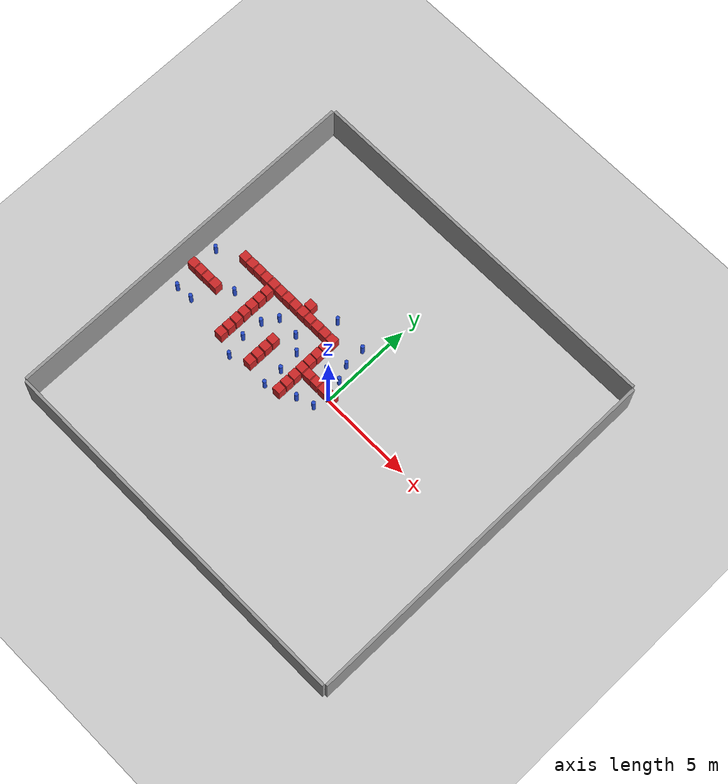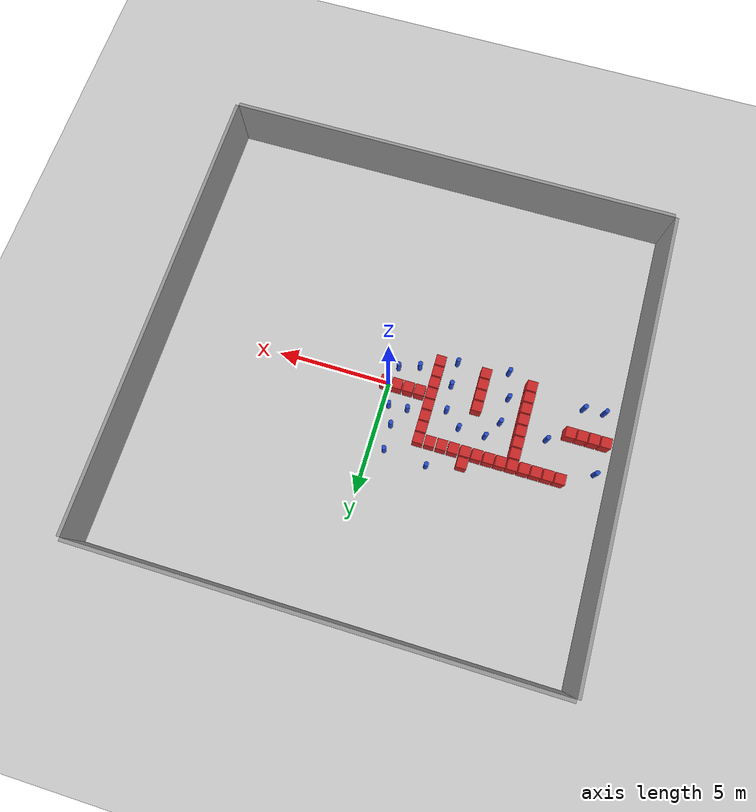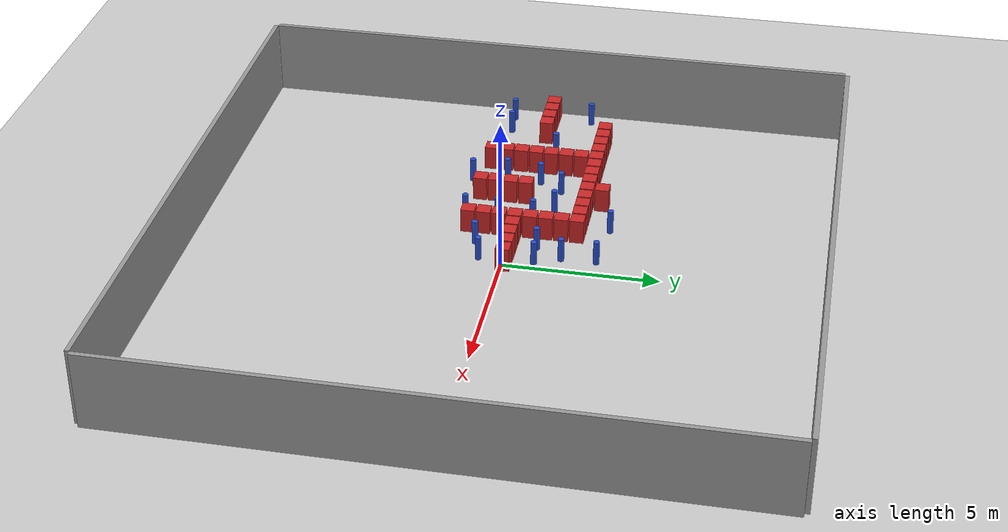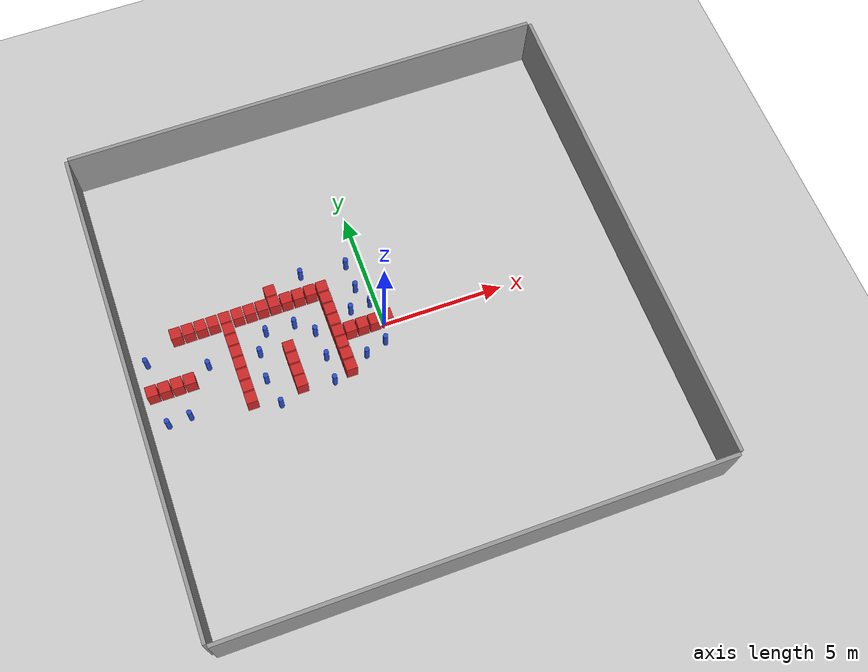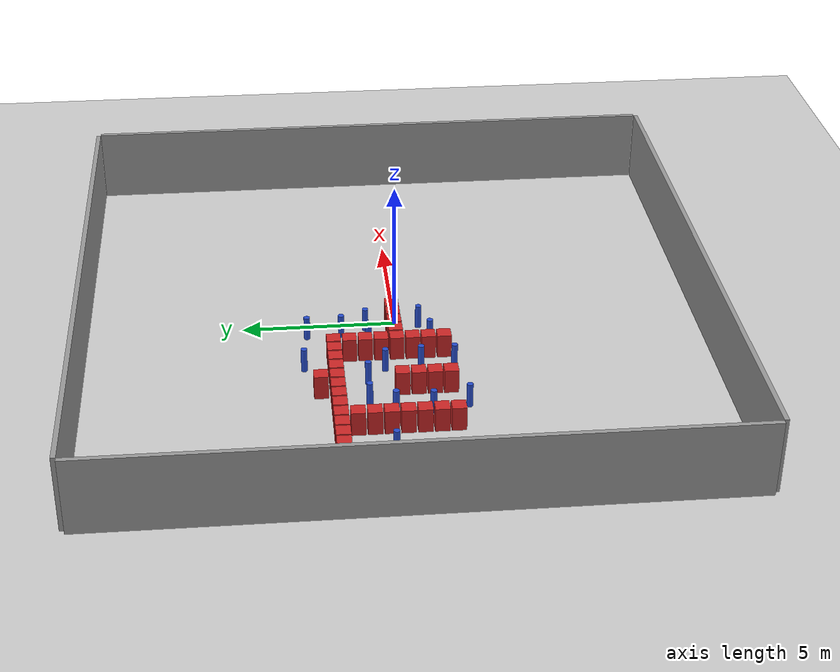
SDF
<sdf version="1.6">
 <world name="default">
  <model name="ground_plane">
   <static>1</static>
   <link name="link">
    <collision name="collision">
     <geometry><plane><normal>0 0 1</normal><size>100 100</size></plane></geometry>
     <surface><friction><ode><mu>100</mu><mu2>50</mu2></ode></friction></surface>
    </collision>
    <visual name="visual">
     <cast_shadows>0</cast_shadows>
     <geometry><plane><normal>0 0 1</normal><size>100 100</size></plane></geometry>
     <material>
      <script><uri>file://media/materials/scripts/gazebo.material</uri><name>Gazebo/Grey</name></script>
     </material>
    </visual>
   </link>
  </model>
  <model name="NamedLocations"><static>1</static><link name="DefaultStart"/></model>
  <model name="20x20_walls">
   <pose>0.044518 0.0211 0 0 -0 0</pose>
   <link name="Wall_1">
    <collision name="Wall_1_Collision">
     <geometry><box><size>20 0.15 2.5</size></box></geometry>
     <pose>0 0 1.25 0 -0 0</pose>
    </collision>
    <visual name="Wall_1_Visual">
     <pose>0 0 1.25 0 -0 0</pose>
     <geometry><box><size>20 0.15 2.5</size></box></geometry>
     <material>
      <script><uri>file://media/materials/scripts/gazebo.material</uri><name>Gazebo/Grey</name></script>
      <ambient>0.976471 0.992157 1 1</ambient>
     </material>
     <meta><layer>0</layer></meta>
    </visual>
    <pose>0 10.08 0 0 -0 0</pose>
   </link>
   <link name="Wall_3">
    <collision name="Wall_3_Collision">
     <geometry><box><size>20 0.15 2.5</size></box></geometry>
     <pose>0 0 1.25 0 -0 0</pose>
    </collision>
    <visual name="Wall_3_Visual">
     <pose>0 0 1.25 0 -0 0</pose>
     <geometry><box><size>20 0.15 2.5</size></box></geometry>
     <material>
      <script><uri>file://media/materials/scripts/gazebo.material</uri><name>Gazebo/Grey</name></script>
      <ambient>0.976471 0.992157 1 1</ambient>
     </material>
     <meta><layer>0</layer></meta>
    </visual>
    <pose>10.08 0 0 0 0 -1.5708</pose>
   </link>
   <link name="Wall_4">
    <collision name="Wall_4_Collision">
     <geometry><box><size>20 0.15 2.5</size></box></geometry>
     <pose>0 0 1.25 0 -0 0</pose>
    </collision>
    <visual name="Wall_4_Visual">
     <pose>0 0 1.25 0 -0 0</pose>
     <geometry><box><size>20 0.15 2.5</size></box></geometry>
     <material>
      <script><uri>file://media/materials/scripts/gazebo.material</uri><name>Gazebo/Grey</name></script>
      <ambient>0.976471 0.992157 1 1</ambient>
     </material>
     <meta><layer>0</layer></meta>
    </visual>
    <pose>0 -10.08 0 0 -0 3.14159</pose>
   </link>
   <link name="Wall_5">
    <collision name="Wall_5_Collision">
     <geometry><box><size>20 0.15 2.5</size></box></geometry>
     <pose>0 0 1.25 0 -0 0</pose>
    </collision>
    <visual name="Wall_5_Visual">
     <pose>0 0 1.25 0 -0 0</pose>
     <geometry><box><size>20 0.15 2.5</size></box></geometry>
     <material>
      <script><uri>file://media/materials/scripts/gazebo.material</uri><name>Gazebo/Grey</name></script>
      <ambient>0.976471 0.992157 1 1</ambient>
     </material>
     <meta><layer>0</layer></meta>
    </visual>
    <pose>-10.08 0 0 0 -0 1.5708</pose>
   </link>
   <static>1</static>
  </model>
  <model name="box_obstacle1">
   <static>0</static>
   <link name="box_obstacle">
    <pose>0 0 0.1 0 -0 0</pose>
    <inertial>
     <mass>100</mass>
     <inertia>
      <ixx>0.166667</ixx>
      <ixy>0</ixy>
      <ixz>0</ixz>
      <iyy>0.166667</iyy>
      <iyz>0</iyz>
      <izz>0.166667</izz>
     </inertia>
    </inertial>
    <collision name="collision"><geometry><box><size>0.45 0.45 0.8</size></box></geometry></collision>
    <visual name="visual">
     <geometry><box><size>0.45 0.45 0.8</size></box></geometry>
     <material>
      <script><name>Gazebo/Red</name><uri>file://media/materials/scripts/gazebo.material</uri></script>
     </material>
    </visual>
   </link>
   <pose>-9.49545 0.099728 0.299997 -3e-06 5e-06 -4e-06</pose>
  </model>
  <model name="box_obstacle4">
   <static>0</static>
   <link name="box_obstacle">
    <pose>0 0 0.1 0 -0 0</pose>
    <inertial>
     <mass>100</mass>
     <inertia>
      <ixx>0.166667</ixx>
      <ixy>0</ixy>
      <ixz>0</ixz>
      <iyy>0.166667</iyy>
      <iyz>0</iyz>
      <izz>0.166667</izz>
     </inertia>
    </inertial>
    <collision name="collision"><geometry><box><size>0.45 0.45 0.8</size></box></geometry></collision>
    <visual name="visual">
     <geometry><box><size>0.45 0.45 0.8</size></box></geometry>
     <material>
      <script><name>Gazebo/Red</name><uri>file://media/materials/scripts/gazebo.material</uri></script>
     </material>
    </visual>
   </link>
   <pose>-8.99045 0.099728 0.299997 -3e-06 5e-06 -4e-06</pose>
  </model>
  <model name="box_obstacle7">
   <static>0</static>
   <link name="box_obstacle">
    <pose>0 0 0.1 0 -0 0</pose>
    <inertial>
     <mass>100</mass>
     <inertia>
      <ixx>0.166667</ixx>
      <ixy>0</ixy>
      <ixz>0</ixz>
      <iyy>0.166667</iyy>
      <iyz>0</iyz>
      <izz>0.166667</izz>
     </inertia>
    </inertial>
    <collision name="collision"><geometry><box><size>0.45 0.45 0.8</size></box></geometry></collision>
    <visual name="visual">
     <geometry><box><size>0.45 0.45 0.8</size></box></geometry>
     <material>
      <script><name>Gazebo/Red</name><uri>file://media/materials/scripts/gazebo.material</uri></script>
     </material>
    </visual>
   </link>
   <pose>-8.48545 0.099728 0.299997 -3e-06 5e-06 -4e-06</pose>
  </model>
  <model name="box_obstacle16">
   <static>0</static>
   <link name="box_obstacle">
    <pose>0 0 0.1 0 -0 0</pose>
    <inertial>
     <mass>100</mass>
     <inertia>
      <ixx>0.166667</ixx>
      <ixy>0</ixy>
      <ixz>0</ixz>
      <iyy>0.166667</iyy>
      <iyz>0</iyz>
      <izz>0.166667</izz>
     </inertia>
    </inertial>
    <collision name="collision"><geometry><box><size>0.45 0.45 0.8</size></box></geometry></collision>
    <visual name="visual">
     <geometry><box><size>0.45 0.45 0.8</size></box></geometry>
     <material>
      <script><name>Gazebo/Red</name><uri>file://media/materials/scripts/gazebo.material</uri></script>
     </material>
    </visual>
   </link>
   <pose>-7.98045 0.099728 0.299997 -3e-06 5e-06 -4e-06</pose>
  </model>
  <model name="box_obstacle17">
   <static>0</static>
   <link name="box_obstacle">
    <pose>0 0 0.1 0 -0 0</pose>
    <inertial>
     <mass>100</mass>
     <inertia>
      <ixx>0.166667</ixx>
      <ixy>0</ixy>
      <ixz>0</ixz>
      <iyy>0.166667</iyy>
      <iyz>0</iyz>
      <izz>0.166667</izz>
     </inertia>
    </inertial>
    <collision name="collision"><geometry><box><size>0.45 0.45 0.8</size></box></geometry></collision>
    <visual name="visual">
     <geometry><box><size>0.45 0.45 0.8</size></box></geometry>
     <material>
      <script><name>Gazebo/Red</name><uri>file://media/materials/scripts/gazebo.material</uri></script>
     </material>
    </visual>
   </link>
   <pose>-7.98045 2.11973 0.299997 -3e-06 5e-06 -4e-06</pose>
  </model>
  <model name="box_obstacle28">
   <static>0</static>
   <link name="box_obstacle">
    <pose>0 0 0.1 0 -0 0</pose>
    <inertial>
     <mass>100</mass>
     <inertia>
      <ixx>0.166667</ixx>
      <ixy>0</ixy>
      <ixz>0</ixz>
      <iyy>0.166667</iyy>
      <iyz>0</iyz>
      <izz>0.166667</izz>
     </inertia>
    </inertial>
    <collision name="collision"><geometry><box><size>0.45 0.45 0.8</size></box></geometry></collision>
    <visual name="visual">
     <geometry><box><size>0.45 0.45 0.8</size></box></geometry>
     <material>
      <script><name>Gazebo/Red</name><uri>file://media/materials/scripts/gazebo.material</uri></script>
     </material>
    </visual>
   </link>
   <pose>-7.47545 2.11973 0.299997 -3e-06 5e-06 -4e-06</pose>
  </model>
  <model name="box_obstacle35">
   <static>0</static>
   <link name="box_obstacle">
    <pose>0 0 0.1 0 -0 0</pose>
    <inertial>
     <mass>100</mass>
     <inertia>
      <ixx>0.166667</ixx>
      <ixy>0</ixy>
      <ixz>0</ixz>
      <iyy>0.166667</iyy>
      <iyz>0</iyz>
      <izz>0.166667</izz>
     </inertia>
    </inertial>
    <collision name="collision"><geometry><box><size>0.45 0.45 0.8</size></box></geometry></collision>
    <visual name="visual">
     <geometry><box><size>0.45 0.45 0.8</size></box></geometry>
     <material>
      <script><name>Gazebo/Red</name><uri>file://media/materials/scripts/gazebo.material</uri></script>
     </material>
    </visual>
   </link>
   <pose>-6.97045 2.11973 0.299997 -3e-06 5e-06 -4e-06</pose>
  </model>
  <model name="box_obstacle42">
   <static>0</static>
   <link name="box_obstacle">
    <pose>0 0 0.1 0 -0 0</pose>
    <inertial>
     <mass>100</mass>
     <inertia>
      <ixx>0.166667</ixx>
      <ixy>0</ixy>
      <ixz>0</ixz>
      <iyy>0.166667</iyy>
      <iyz>0</iyz>
      <izz>0.166667</izz>
     </inertia>
    </inertial>
    <collision name="collision"><geometry><box><size>0.45 0.45 0.8</size></box></geometry></collision>
    <visual name="visual">
     <geometry><box><size>0.45 0.45 0.8</size></box></geometry>
     <material>
      <script><name>Gazebo/Red</name><uri>file://media/materials/scripts/gazebo.material</uri></script>
     </material>
    </visual>
   </link>
   <pose>-6.46545 2.11973 0.299997 -3e-06 5e-06 -4e-06</pose>
  </model>
  <model name="box_obstacle49">
   <static>0</static>
   <link name="box_obstacle">
    <pose>0 0 0.1 0 -0 0</pose>
    <inertial>
     <mass>100</mass>
     <inertia>
      <ixx>0.166667</ixx>
      <ixy>0</ixy>
      <ixz>0</ixz>
      <iyy>0.166667</iyy>
      <iyz>0</iyz>
      <izz>0.166667</izz>
     </inertia>
    </inertial>
    <collision name="collision"><geometry><box><size>0.45 0.45 0.8</size></box></geometry></collision>
    <visual name="visual">
     <geometry><box><size>0.45 0.45 0.8</size></box></geometry>
     <material>
      <script><name>Gazebo/Red</name><uri>file://media/materials/scripts/gazebo.material</uri></script>
     </material>
    </visual>
   </link>
   <pose>-5.96045 -1.41527 0.299997 -3e-06 5e-06 -4e-06</pose>
  </model>
  <model name="box_obstacle50">
   <static>0</static>
   <link name="box_obstacle">
    <pose>0 0 0.1 0 -0 0</pose>
    <inertial>
     <mass>100</mass>
     <inertia>
      <ixx>0.166667</ixx>
      <ixy>0</ixy>
      <ixz>0</ixz>
      <iyy>0.166667</iyy>
      <iyz>0</iyz>
      <izz>0.166667</izz>
     </inertia>
    </inertial>
    <collision name="collision"><geometry><box><size>0.45 0.45 0.8</size></box></geometry></collision>
    <visual name="visual">
     <geometry><box><size>0.45 0.45 0.8</size></box></geometry>
     <material>
      <script><name>Gazebo/Red</name><uri>file://media/materials/scripts/gazebo.material</uri></script>
     </material>
    </visual>
   </link>
   <pose>-5.96045 -0.910272 0.299997 -3e-06 5e-06 -4e-06</pose>
  </model>
  <model name="box_obstacle51">
   <static>0</static>
   <link name="box_obstacle">
    <pose>0 0 0.1 0 -0 0</pose>
    <inertial>
     <mass>100</mass>
     <inertia>
      <ixx>0.166667</ixx>
      <ixy>0</ixy>
      <ixz>0</ixz>
      <iyy>0.166667</iyy>
      <iyz>0</iyz>
      <izz>0.166667</izz>
     </inertia>
    </inertial>
    <collision name="collision"><geometry><box><size>0.45 0.45 0.8</size></box></geometry></collision>
    <visual name="visual">
     <geometry><box><size>0.45 0.45 0.8</size></box></geometry>
     <material>
      <script><name>Gazebo/Red</name><uri>file://media/materials/scripts/gazebo.material</uri></script>
     </material>
    </visual>
   </link>
   <pose>-5.96045 -0.405272 0.299997 -3e-06 5e-06 -4e-06</pose>
  </model>
  <model name="box_obstacle52">
   <static>0</static>
   <link name="box_obstacle">
    <pose>0 0 0.1 0 -0 0</pose>
    <inertial>
     <mass>100</mass>
     <inertia>
      <ixx>0.166667</ixx>
      <ixy>0</ixy>
      <ixz>0</ixz>
      <iyy>0.166667</iyy>
      <iyz>0</iyz>
      <izz>0.166667</izz>
     </inertia>
    </inertial>
    <collision name="collision"><geometry><box><size>0.45 0.45 0.8</size></box></geometry></collision>
    <visual name="visual">
     <geometry><box><size>0.45 0.45 0.8</size></box></geometry>
     <material>
      <script><name>Gazebo/Red</name><uri>file://media/materials/scripts/gazebo.material</uri></script>
     </material>
    </visual>
   </link>
   <pose>-5.96045 0.099728 0.299997 -3e-06 5e-06 -4e-06</pose>
  </model>
  <model name="box_obstacle53">
   <static>0</static>
   <link name="box_obstacle">
    <pose>0 0 0.1 0 -0 0</pose>
    <inertial>
     <mass>100</mass>
     <inertia>
      <ixx>0.166667</ixx>
      <ixy>0</ixy>
      <ixz>0</ixz>
      <iyy>0.166667</iyy>
      <iyz>0</iyz>
      <izz>0.166667</izz>
     </inertia>
    </inertial>
    <collision name="collision"><geometry><box><size>0.45 0.45 0.8</size></box></geometry></collision>
    <visual name="visual">
     <geometry><box><size>0.45 0.45 0.8</size></box></geometry>
     <material>
      <script><name>Gazebo/Red</name><uri>file://media/materials/scripts/gazebo.material</uri></script>
     </material>
    </visual>
   </link>
   <pose>-5.96045 0.604728 0.299997 -3e-06 5e-06 -4e-06</pose>
  </model>
  <model name="box_obstacle54">
   <static>0</static>
   <link name="box_obstacle">
    <pose>0 0 0.1 0 -0 0</pose>
    <inertial>
     <mass>100</mass>
     <inertia>
      <ixx>0.166667</ixx>
      <ixy>0</ixy>
      <ixz>0</ixz>
      <iyy>0.166667</iyy>
      <iyz>0</iyz>
      <izz>0.166667</izz>
     </inertia>
    </inertial>
    <collision name="collision"><geometry><box><size>0.45 0.45 0.8</size></box></geometry></collision>
    <visual name="visual">
     <geometry><box><size>0.45 0.45 0.8</size></box></geometry>
     <material>
      <script><name>Gazebo/Red</name><uri>file://media/materials/scripts/gazebo.material</uri></script>
     </material>
    </visual>
   </link>
   <pose>-5.96045 1.10973 0.299997 -3e-06 5e-06 -4e-06</pose>
  </model>
  <model name="box_obstacle55">
   <static>0</static>
   <link name="box_obstacle">
    <pose>0 0 0.1 0 -0 0</pose>
    <inertial>
     <mass>100</mass>
     <inertia>
      <ixx>0.166667</ixx>
      <ixy>0</ixy>
      <ixz>0</ixz>
      <iyy>0.166667</iyy>
      <iyz>0</iyz>
      <izz>0.166667</izz>
     </inertia>
    </inertial>
    <collision name="collision"><geometry><box><size>0.45 0.45 0.8</size></box></geometry></collision>
    <visual name="visual">
     <geometry><box><size>0.45 0.45 0.8</size></box></geometry>
     <material>
      <script><name>Gazebo/Red</name><uri>file://media/materials/scripts/gazebo.material</uri></script>
     </material>
    </visual>
   </link>
   <pose>-5.96045 1.61473 0.299997 -3e-06 5e-06 -4e-06</pose>
  </model>
  <model name="box_obstacle56">
   <static>0</static>
   <link name="box_obstacle">
    <pose>0 0 0.1 0 -0 0</pose>
    <inertial>
     <mass>100</mass>
     <inertia>
      <ixx>0.166667</ixx>
      <ixy>0</ixy>
      <ixz>0</ixz>
      <iyy>0.166667</iyy>
      <iyz>0</iyz>
      <izz>0.166667</izz>
     </inertia>
    </inertial>
    <collision name="collision"><geometry><box><size>0.45 0.45 0.8</size></box></geometry></collision>
    <visual name="visual">
     <geometry><box><size>0.45 0.45 0.8</size></box></geometry>
     <material>
      <script><name>Gazebo/Red</name><uri>file://media/materials/scripts/gazebo.material</uri></script>
     </material>
    </visual>
   </link>
   <pose>-5.96045 2.11973 0.299997 -3e-06 5e-06 -4e-06</pose>
  </model>
  <model name="box_obstacle68">
   <static>0</static>
   <link name="box_obstacle">
    <pose>0 0 0.1 0 -0 0</pose>
    <inertial>
     <mass>100</mass>
     <inertia>
      <ixx>0.166667</ixx>
      <ixy>0</ixy>
      <ixz>0</ixz>
      <iyy>0.166667</iyy>
      <iyz>0</iyz>
      <izz>0.166667</izz>
     </inertia>
    </inertial>
    <collision name="collision"><geometry><box><size>0.45 0.45 0.8</size></box></geometry></collision>
    <visual name="visual">
     <geometry><box><size>0.45 0.45 0.8</size></box></geometry>
     <material>
      <script><name>Gazebo/Red</name><uri>file://media/materials/scripts/gazebo.material</uri></script>
     </material>
    </visual>
   </link>
   <pose>-5.45545 2.11973 0.299997 -3e-06 5e-06 -4e-06</pose>
  </model>
  <model name="box_obstacle72">
   <static>0</static>
   <link name="box_obstacle">
    <pose>0 0 0.1 0 -0 0</pose>
    <inertial>
     <mass>100</mass>
     <inertia>
      <ixx>0.166667</ixx>
      <ixy>0</ixy>
      <ixz>0</ixz>
      <iyy>0.166667</iyy>
      <iyz>0</iyz>
      <izz>0.166667</izz>
     </inertia>
    </inertial>
    <collision name="collision"><geometry><box><size>0.45 0.45 0.8</size></box></geometry></collision>
    <visual name="visual">
     <geometry><box><size>0.45 0.45 0.8</size></box></geometry>
     <material>
      <script><name>Gazebo/Red</name><uri>file://media/materials/scripts/gazebo.material</uri></script>
     </material>
    </visual>
   </link>
   <pose>-4.95045 2.11973 0.299997 -3e-06 5e-06 -4e-06</pose>
  </model>
  <model name="box_obstacle76">
   <static>0</static>
   <link name="box_obstacle">
    <pose>0 0 0.1 0 -0 0</pose>
    <inertial>
     <mass>100</mass>
     <inertia>
      <ixx>0.166667</ixx>
      <ixy>0</ixy>
      <ixz>0</ixz>
      <iyy>0.166667</iyy>
      <iyz>0</iyz>
      <izz>0.166667</izz>
     </inertia>
    </inertial>
    <collision name="collision"><geometry><box><size>0.45 0.45 0.8</size></box></geometry></collision>
    <visual name="visual">
     <geometry><box><size>0.45 0.45 0.8</size></box></geometry>
     <material>
      <script><name>Gazebo/Red</name><uri>file://media/materials/scripts/gazebo.material</uri></script>
     </material>
    </visual>
   </link>
   <pose>-4.44545 2.11973 0.299997 -3e-06 5e-06 -4e-06</pose>
  </model>
  <model name="box_obstacle88">
   <static>0</static>
   <link name="box_obstacle">
    <pose>0 0 0.1 0 -0 0</pose>
    <inertial>
     <mass>100</mass>
     <inertia>
      <ixx>0.166667</ixx>
      <ixy>0</ixy>
      <ixz>0</ixz>
      <iyy>0.166667</iyy>
      <iyz>0</iyz>
      <izz>0.166667</izz>
     </inertia>
    </inertial>
    <collision name="collision"><geometry><box><size>0.45 0.45 0.8</size></box></geometry></collision>
    <visual name="visual">
     <geometry><box><size>0.45 0.45 0.8</size></box></geometry>
     <material>
      <script><name>Gazebo/Red</name><uri>file://media/materials/scripts/gazebo.material</uri></script>
     </material>
    </visual>
   </link>
   <pose>-3.94045 -1.41527 0.299997 -3e-06 5e-06 -4e-06</pose>
  </model>
  <model name="box_obstacle89">
   <static>0</static>
   <link name="box_obstacle">
    <pose>0 0 0.1 0 -0 0</pose>
    <inertial>
     <mass>100</mass>
     <inertia>
      <ixx>0.166667</ixx>
      <ixy>0</ixy>
      <ixz>0</ixz>
      <iyy>0.166667</iyy>
      <iyz>0</iyz>
      <izz>0.166667</izz>
     </inertia>
    </inertial>
    <collision name="collision"><geometry><box><size>0.45 0.45 0.8</size></box></geometry></collision>
    <visual name="visual">
     <geometry><box><size>0.45 0.45 0.8</size></box></geometry>
     <material>
      <script><name>Gazebo/Red</name><uri>file://media/materials/scripts/gazebo.material</uri></script>
     </material>
    </visual>
   </link>
   <pose>-3.94045 -0.910272 0.299997 -3e-06 5e-06 -4e-06</pose>
  </model>
  <model name="box_obstacle90">
   <static>0</static>
   <link name="box_obstacle">
    <pose>0 0 0.1 0 -0 0</pose>
    <inertial>
     <mass>100</mass>
     <inertia>
      <ixx>0.166667</ixx>
      <ixy>0</ixy>
      <ixz>0</ixz>
      <iyy>0.166667</iyy>
      <iyz>0</iyz>
      <izz>0.166667</izz>
     </inertia>
    </inertial>
    <collision name="collision"><geometry><box><size>0.45 0.45 0.8</size></box></geometry></collision>
    <visual name="visual">
     <geometry><box><size>0.45 0.45 0.8</size></box></geometry>
     <material>
      <script><name>Gazebo/Red</name><uri>file://media/materials/scripts/gazebo.material</uri></script>
     </material>
    </visual>
   </link>
   <pose>-3.94045 -0.405272 0.299997 -3e-06 5e-06 -4e-06</pose>
  </model>
  <model name="box_obstacle91">
   <static>0</static>
   <link name="box_obstacle">
    <pose>0 0 0.1 0 -0 0</pose>
    <inertial>
     <mass>100</mass>
     <inertia>
      <ixx>0.166667</ixx>
      <ixy>0</ixy>
      <ixz>0</ixz>
      <iyy>0.166667</iyy>
      <iyz>0</iyz>
      <izz>0.166667</izz>
     </inertia>
    </inertial>
    <collision name="collision"><geometry><box><size>0.45 0.45 0.8</size></box></geometry></collision>
    <visual name="visual">
     <geometry><box><size>0.45 0.45 0.8</size></box></geometry>
     <material>
      <script><name>Gazebo/Red</name><uri>file://media/materials/scripts/gazebo.material</uri></script>
     </material>
    </visual>
   </link>
   <pose>-3.94045 0.099728 0.299997 -3e-06 5e-06 -4e-06</pose>
  </model>
  <model name="box_obstacle92">
   <static>0</static>
   <link name="box_obstacle">
    <pose>0 0 0.1 0 -0 0</pose>
    <inertial>
     <mass>100</mass>
     <inertia>
      <ixx>0.166667</ixx>
      <ixy>0</ixy>
      <ixz>0</ixz>
      <iyy>0.166667</iyy>
      <iyz>0</iyz>
      <izz>0.166667</izz>
     </inertia>
    </inertial>
    <collision name="collision"><geometry><box><size>0.45 0.45 0.8</size></box></geometry></collision>
    <visual name="visual">
     <geometry><box><size>0.45 0.45 0.8</size></box></geometry>
     <material>
      <script><name>Gazebo/Red</name><uri>file://media/materials/scripts/gazebo.material</uri></script>
     </material>
    </visual>
   </link>
   <pose>-3.94045 2.11973 0.299997 -3e-06 5e-06 -4e-06</pose>
  </model>
  <model name="box_obstacle93">
   <static>0</static>
   <link name="box_obstacle">
    <pose>0 0 0.1 0 -0 0</pose>
    <inertial>
     <mass>100</mass>
     <inertia>
      <ixx>0.166667</ixx>
      <ixy>0</ixy>
      <ixz>0</ixz>
      <iyy>0.166667</iyy>
      <iyz>0</iyz>
      <izz>0.166667</izz>
     </inertia>
    </inertial>
    <collision name="collision"><geometry><box><size>0.45 0.45 0.8</size></box></geometry></collision>
    <visual name="visual">
     <geometry><box><size>0.45 0.45 0.8</size></box></geometry>
     <material>
      <script><name>Gazebo/Red</name><uri>file://media/materials/scripts/gazebo.material</uri></script>
     </material>
    </visual>
   </link>
   <pose>-3.94045 2.62473 0.299997 -3e-06 5e-06 -4e-06</pose>
  </model>
  <model name="box_obstacle104">
   <static>0</static>
   <link name="box_obstacle">
    <pose>0 0 0.1 0 -0 0</pose>
    <inertial>
     <mass>100</mass>
     <inertia>
      <ixx>0.166667</ixx>
      <ixy>0</ixy>
      <ixz>0</ixz>
      <iyy>0.166667</iyy>
      <iyz>0</iyz>
      <izz>0.166667</izz>
     </inertia>
    </inertial>
    <collision name="collision"><geometry><box><size>0.45 0.45 0.8</size></box></geometry></collision>
    <visual name="visual">
     <geometry><box><size>0.45 0.45 0.8</size></box></geometry>
     <material>
      <script><name>Gazebo/Red</name><uri>file://media/materials/scripts/gazebo.material</uri></script>
     </material>
    </visual>
   </link>
   <pose>-3.43545 2.11973 0.299997 -3e-06 5e-06 -4e-06</pose>
  </model>
  <model name="box_obstacle109">
   <static>0</static>
   <link name="box_obstacle">
    <pose>0 0 0.1 0 -0 0</pose>
    <inertial>
     <mass>100</mass>
     <inertia>
      <ixx>0.166667</ixx>
      <ixy>0</ixy>
      <ixz>0</ixz>
      <iyy>0.166667</iyy>
      <iyz>0</iyz>
      <izz>0.166667</izz>
     </inertia>
    </inertial>
    <collision name="collision"><geometry><box><size>0.45 0.45 0.8</size></box></geometry></collision>
    <visual name="visual">
     <geometry><box><size>0.45 0.45 0.8</size></box></geometry>
     <material>
      <script><name>Gazebo/Red</name><uri>file://media/materials/scripts/gazebo.material</uri></script>
     </material>
    </visual>
   </link>
   <pose>-2.93045 2.11973 0.299997 -3e-06 5e-06 -4e-06</pose>
  </model>
  <model name="box_obstacle114">
   <static>0</static>
   <link name="box_obstacle">
    <pose>0 0 0.1 0 -0 0</pose>
    <inertial>
     <mass>100</mass>
     <inertia>
      <ixx>0.166667</ixx>
      <ixy>0</ixy>
      <ixz>0</ixz>
      <iyy>0.166667</iyy>
      <iyz>0</iyz>
      <izz>0.166667</izz>
     </inertia>
    </inertial>
    <collision name="collision"><geometry><box><size>0.45 0.45 0.8</size></box></geometry></collision>
    <visual name="visual">
     <geometry><box><size>0.45 0.45 0.8</size></box></geometry>
     <material>
      <script><name>Gazebo/Red</name><uri>file://media/materials/scripts/gazebo.material</uri></script>
     </material>
    </visual>
   </link>
   <pose>-2.42545 2.11973 0.299997 -3e-06 5e-06 -4e-06</pose>
  </model>
  <model name="box_obstacle121">
   <static>0</static>
   <link name="box_obstacle">
    <pose>0 0 0.1 0 -0 0</pose>
    <inertial>
     <mass>100</mass>
     <inertia>
      <ixx>0.166667</ixx>
      <ixy>0</ixy>
      <ixz>0</ixz>
      <iyy>0.166667</iyy>
      <iyz>0</iyz>
      <izz>0.166667</izz>
     </inertia>
    </inertial>
    <collision name="collision"><geometry><box><size>0.45 0.45 0.8</size></box></geometry></collision>
    <visual name="visual">
     <geometry><box><size>0.45 0.45 0.8</size></box></geometry>
     <material>
      <script><name>Gazebo/Red</name><uri>file://media/materials/scripts/gazebo.material</uri></script>
     </material>
    </visual>
   </link>
   <pose>-1.92045 -1.41527 0.299997 -3e-06 5e-06 -4e-06</pose>
  </model>
  <model name="box_obstacle122">
   <static>0</static>
   <link name="box_obstacle">
    <pose>0 0 0.1 0 -0 0</pose>
    <inertial>
     <mass>100</mass>
     <inertia>
      <ixx>0.166667</ixx>
      <ixy>0</ixy>
      <ixz>0</ixz>
      <iyy>0.166667</iyy>
      <iyz>0</iyz>
      <izz>0.166667</izz>
     </inertia>
    </inertial>
    <collision name="collision"><geometry><box><size>0.45 0.45 0.8</size></box></geometry></collision>
    <visual name="visual">
     <geometry><box><size>0.45 0.45 0.8</size></box></geometry>
     <material>
      <script><name>Gazebo/Red</name><uri>file://media/materials/scripts/gazebo.material</uri></script>
     </material>
    </visual>
   </link>
   <pose>-1.92045 -0.910272 0.299997 -3e-06 5e-06 -4e-06</pose>
  </model>
  <model name="box_obstacle123">
   <static>0</static>
   <link name="box_obstacle">
    <pose>0 0 0.1 0 -0 0</pose>
    <inertial>
     <mass>100</mass>
     <inertia>
      <ixx>0.166667</ixx>
      <ixy>0</ixy>
      <ixz>0</ixz>
      <iyy>0.166667</iyy>
      <iyz>0</iyz>
      <izz>0.166667</izz>
     </inertia>
    </inertial>
    <collision name="collision"><geometry><box><size>0.45 0.45 0.8</size></box></geometry></collision>
    <visual name="visual">
     <geometry><box><size>0.45 0.45 0.8</size></box></geometry>
     <material>
      <script><name>Gazebo/Red</name><uri>file://media/materials/scripts/gazebo.material</uri></script>
     </material>
    </visual>
   </link>
   <pose>-1.92045 -0.405272 0.299997 -3e-06 5e-06 -4e-06</pose>
  </model>
  <model name="box_obstacle124">
   <static>0</static>
   <link name="box_obstacle">
    <pose>0 0 0.1 0 -0 0</pose>
    <inertial>
     <mass>100</mass>
     <inertia>
      <ixx>0.166667</ixx>
      <ixy>0</ixy>
      <ixz>0</ixz>
      <iyy>0.166667</iyy>
      <iyz>0</iyz>
      <izz>0.166667</izz>
     </inertia>
    </inertial>
    <collision name="collision"><geometry><box><size>0.45 0.45 0.8</size></box></geometry></collision>
    <visual name="visual">
     <geometry><box><size>0.45 0.45 0.8</size></box></geometry>
     <material>
      <script><name>Gazebo/Red</name><uri>file://media/materials/scripts/gazebo.material</uri></script>
     </material>
    </visual>
   </link>
   <pose>-1.92045 0.099728 0.299997 -3e-06 5e-06 -4e-06</pose>
  </model>
  <model name="box_obstacle125">
   <static>0</static>
   <link name="box_obstacle">
    <pose>0 0 0.1 0 -0 0</pose>
    <inertial>
     <mass>100</mass>
     <inertia>
      <ixx>0.166667</ixx>
      <ixy>0</ixy>
      <ixz>0</ixz>
      <iyy>0.166667</iyy>
      <iyz>0</iyz>
      <izz>0.166667</izz>
     </inertia>
    </inertial>
    <collision name="collision"><geometry><box><size>0.45 0.45 0.8</size></box></geometry></collision>
    <visual name="visual">
     <geometry><box><size>0.45 0.45 0.8</size></box></geometry>
     <material>
      <script><name>Gazebo/Red</name><uri>file://media/materials/scripts/gazebo.material</uri></script>
     </material>
    </visual>
   </link>
   <pose>-1.92045 0.604728 0.299997 -3e-06 5e-06 -4e-06</pose>
  </model>
  <model name="box_obstacle126">
   <static>0</static>
   <link name="box_obstacle">
    <pose>0 0 0.1 0 -0 0</pose>
    <inertial>
     <mass>100</mass>
     <inertia>
      <ixx>0.166667</ixx>
      <ixy>0</ixy>
      <ixz>0</ixz>
      <iyy>0.166667</iyy>
      <iyz>0</iyz>
      <izz>0.166667</izz>
     </inertia>
    </inertial>
    <collision name="collision"><geometry><box><size>0.45 0.45 0.8</size></box></geometry></collision>
    <visual name="visual">
     <geometry><box><size>0.45 0.45 0.8</size></box></geometry>
     <material>
      <script><name>Gazebo/Red</name><uri>file://media/materials/scripts/gazebo.material</uri></script>
     </material>
    </visual>
   </link>
   <pose>-1.92045 1.10973 0.299997 -3e-06 5e-06 -4e-06</pose>
  </model>
  <model name="box_obstacle127">
   <static>0</static>
   <link name="box_obstacle">
    <pose>0 0 0.1 0 -0 0</pose>
    <inertial>
     <mass>100</mass>
     <inertia>
      <ixx>0.166667</ixx>
      <ixy>0</ixy>
      <ixz>0</ixz>
      <iyy>0.166667</iyy>
      <iyz>0</iyz>
      <izz>0.166667</izz>
     </inertia>
    </inertial>
    <collision name="collision"><geometry><box><size>0.45 0.45 0.8</size></box></geometry></collision>
    <visual name="visual">
     <geometry><box><size>0.45 0.45 0.8</size></box></geometry>
     <material>
      <script><name>Gazebo/Red</name><uri>file://media/materials/scripts/gazebo.material</uri></script>
     </material>
    </visual>
   </link>
   <pose>-1.92045 1.61473 0.299997 -3e-06 5e-06 -4e-06</pose>
  </model>
  <model name="box_obstacle128">
   <static>0</static>
   <link name="box_obstacle">
    <pose>0 0 0.1 0 -0 0</pose>
    <inertial>
     <mass>100</mass>
     <inertia>
      <ixx>0.166667</ixx>
      <ixy>0</ixy>
      <ixz>0</ixz>
      <iyy>0.166667</iyy>
      <iyz>0</iyz>
      <izz>0.166667</izz>
     </inertia>
    </inertial>
    <collision name="collision"><geometry><box><size>0.45 0.45 0.8</size></box></geometry></collision>
    <visual name="visual">
     <geometry><box><size>0.45 0.45 0.8</size></box></geometry>
     <material>
      <script><name>Gazebo/Red</name><uri>file://media/materials/scripts/gazebo.material</uri></script>
     </material>
    </visual>
   </link>
   <pose>-1.92045 2.11973 0.299997 -3e-06 5e-06 -4e-06</pose>
  </model>
  <model name="box_obstacle139">
   <static>0</static>
   <link name="box_obstacle">
    <pose>0 0 0.1 0 -0 0</pose>
    <inertial>
     <mass>100</mass>
     <inertia>
      <ixx>0.166667</ixx>
      <ixy>0</ixy>
      <ixz>0</ixz>
      <iyy>0.166667</iyy>
      <iyz>0</iyz>
      <izz>0.166667</izz>
     </inertia>
    </inertial>
    <collision name="collision"><geometry><box><size>0.45 0.45 0.8</size></box></geometry></collision>
    <visual name="visual">
     <geometry><box><size>0.45 0.45 0.8</size></box></geometry>
     <material>
      <script><name>Gazebo/Red</name><uri>file://media/materials/scripts/gazebo.material</uri></script>
     </material>
    </visual>
   </link>
   <pose>-1.41545 0.099728 0.299997 -3e-06 5e-06 -4e-06</pose>
  </model>
  <model name="box_obstacle146">
   <static>0</static>
   <link name="box_obstacle">
    <pose>0 0 0.1 0 -0 0</pose>
    <inertial>
     <mass>100</mass>
     <inertia>
      <ixx>0.166667</ixx>
      <ixy>0</ixy>
      <ixz>0</ixz>
      <iyy>0.166667</iyy>
      <iyz>0</iyz>
      <izz>0.166667</izz>
     </inertia>
    </inertial>
    <collision name="collision"><geometry><box><size>0.45 0.45 0.8</size></box></geometry></collision>
    <visual name="visual">
     <geometry><box><size>0.45 0.45 0.8</size></box></geometry>
     <material>
      <script><name>Gazebo/Red</name><uri>file://media/materials/scripts/gazebo.material</uri></script>
     </material>
    </visual>
   </link>
   <pose>-0.910447 0.099728 0.299997 -3e-06 5e-06 -4e-06</pose>
  </model>
  <model name="box_obstacle153">
   <static>0</static>
   <link name="box_obstacle">
    <pose>0 0 0.1 0 -0 0</pose>
    <inertial>
     <mass>100</mass>
     <inertia>
      <ixx>0.166667</ixx>
      <ixy>0</ixy>
      <ixz>0</ixz>
      <iyy>0.166667</iyy>
      <iyz>0</iyz>
      <izz>0.166667</izz>
     </inertia>
    </inertial>
    <collision name="collision"><geometry><box><size>0.45 0.45 0.8</size></box></geometry></collision>
    <visual name="visual">
     <geometry><box><size>0.45 0.45 0.8</size></box></geometry>
     <material>
      <script><name>Gazebo/Red</name><uri>file://media/materials/scripts/gazebo.material</uri></script>
     </material>
    </visual>
   </link>
   <pose>-0.405447 0.099728 0.299997 -3e-06 5e-06 -4e-06</pose>
  </model>
  <model name="box_obstacle160">
   <static>0</static>
   <link name="box_obstacle">
    <pose>0 0 0.1 0 -0 0</pose>
    <inertial>
     <mass>100</mass>
     <inertia>
      <ixx>0.166667</ixx>
      <ixy>0</ixy>
      <ixz>0</ixz>
      <iyy>0.166667</iyy>
      <iyz>0</iyz>
      <izz>0.166667</izz>
     </inertia>
    </inertial>
    <collision name="collision"><geometry><box><size>0.45 0.45 0.8</size></box></geometry></collision>
    <visual name="visual">
     <geometry><box><size>0.45 0.45 0.8</size></box></geometry>
     <material>
      <script><name>Gazebo/Red</name><uri>file://media/materials/scripts/gazebo.material</uri></script>
     </material>
    </visual>
   </link>
   <pose>0.099553 0.099728 0.299997 -3e-06 5e-06 -4e-06</pose>
  </model>
  <model name="cylinder_obstacle0">
   <static>0</static>
   <link name="link">
    <pose>0 0 1 0 -0 0</pose>
    <inertial>
     <mass>100</mass>
     <inertia>
      <ixx>0.166667</ixx>
      <ixy>0</ixy>
      <ixz>0</ixz>
      <iyy>0.166667</iyy>
      <iyz>0</iyz>
      <izz>0.166667</izz>
     </inertia>
    </inertial>
    <collision name="collision">
     <geometry><cylinder><radius>0.1</radius><length>0.8</length></cylinder></geometry>
    </collision>
    <visual name="visual">
     <geometry><cylinder><radius>0.1</radius><length>0.8</length></cylinder></geometry>
     <material>
      <script><name>Gazebo/Blue</name><uri>file://media/materials/scripts/gazebo.material</uri></script>
     </material>
    </visual>
   </link>
   <pose>-8.35847 -1.19453 -0.600002 3e-06 1e-06 0.003885</pose>
  </model>
  <model name="cylinder_obstacle3">
   <static>0</static>
   <link name="link">
    <pose>0 0 1 0 -0 0</pose>
    <inertial>
     <mass>100</mass>
     <inertia>
      <ixx>0.166667</ixx>
      <ixy>0</ixy>
      <ixz>0</ixz>
      <iyy>0.166667</iyy>
      <iyz>0</iyz>
      <izz>0.166667</izz>
     </inertia>
    </inertial>
    <collision name="collision">
     <geometry><cylinder><radius>0.1</radius><length>0.8</length></cylinder></geometry>
    </collision>
    <visual name="visual">
     <geometry><cylinder><radius>0.1</radius><length>0.8</length></cylinder></geometry>
     <material>
      <script><name>Gazebo/Blue</name><uri>file://media/materials/scripts/gazebo.material</uri></script>
     </material>
    </visual>
   </link>
   <pose>-0.622862 1.80342 -0.600002 3e-06 1e-06 0.003885</pose>
  </model>
  <model name="cylinder_obstacle4">
   <static>0</static>
   <link name="link">
    <pose>0 0 1 0 -0 0</pose>
    <inertial>
     <mass>100</mass>
     <inertia>
      <ixx>0.166667</ixx>
      <ixy>0</ixy>
      <ixz>0</ixz>
      <iyy>0.166667</iyy>
      <iyz>0</iyz>
      <izz>0.166667</izz>
     </inertia>
    </inertial>
    <collision name="collision">
     <geometry><cylinder><radius>0.1</radius><length>0.8</length></cylinder></geometry>
    </collision>
    <visual name="visual">
     <geometry><cylinder><radius>0.1</radius><length>0.8</length></cylinder></geometry>
     <material>
      <script><name>Gazebo/Blue</name><uri>file://media/materials/scripts/gazebo.material</uri></script>
     </material>
    </visual>
   </link>
   <pose>-2.73746 0.530738 -0.600002 3e-06 1e-06 0.003885</pose>
  </model>
  <model name="cylinder_obstacle12">
   <static>0</static>
   <link name="link">
    <pose>0 0 1 0 -0 0</pose>
    <inertial>
     <mass>100</mass>
     <inertia>
      <ixx>0.166667</ixx>
      <ixy>0</ixy>
      <ixz>0</ixz>
      <iyy>0.166667</iyy>
      <iyz>0</iyz>
      <izz>0.166667</izz>
     </inertia>
    </inertial>
    <collision name="collision">
     <geometry><cylinder><radius>0.1</radius><length>0.8</length></cylinder></geometry>
    </collision>
    <visual name="visual">
     <geometry><cylinder><radius>0.1</radius><length>0.8</length></cylinder></geometry>
     <material>
      <script><name>Gazebo/Blue</name><uri>file://media/materials/scripts/gazebo.material</uri></script>
     </material>
    </visual>
   </link>
   <pose>-3.42378 1.12482 -0.600002 3e-06 1e-06 0.003885</pose>
  </model>
  <model name="cylinder_obstacle16">
   <static>0</static>
   <link name="link">
    <pose>0 0 1 0 -0 0</pose>
    <inertial>
     <mass>100</mass>
     <inertia>
      <ixx>0.166667</ixx>
      <ixy>0</ixy>
      <ixz>0</ixz>
      <iyy>0.166667</iyy>
      <iyz>0</iyz>
      <izz>0.166667</izz>
     </inertia>
    </inertial>
    <collision name="collision">
     <geometry><cylinder><radius>0.1</radius><length>0.8</length></cylinder></geometry>
    </collision>
    <visual name="visual">
     <geometry><cylinder><radius>0.1</radius><length>0.8</length></cylinder></geometry>
     <material>
      <script><name>Gazebo/Blue</name><uri>file://media/materials/scripts/gazebo.material</uri></script>
     </material>
    </visual>
   </link>
   <pose>-9.40152 1.43687 -0.600002 3e-06 1e-06 0.003885</pose>
  </model>
  <model name="cylinder_obstacle20">
   <static>0</static>
   <link name="link">
    <pose>0 0 1 0 -0 0</pose>
    <inertial>
     <mass>100</mass>
     <inertia>
      <ixx>0.166667</ixx>
      <ixy>0</ixy>
      <ixz>0</ixz>
      <iyy>0.166667</iyy>
      <iyz>0</iyz>
      <izz>0.166667</izz>
     </inertia>
    </inertial>
    <collision name="collision">
     <geometry><cylinder><radius>0.1</radius><length>0.8</length></cylinder></geometry>
    </collision>
    <visual name="visual">
     <geometry><cylinder><radius>0.1</radius><length>0.8</length></cylinder></geometry>
     <material>
      <script><name>Gazebo/Blue</name><uri>file://media/materials/scripts/gazebo.material</uri></script>
     </material>
    </visual>
   </link>
   <pose>-2.6556 -1.67557 -0.600002 3e-06 1e-06 0.003885</pose>
  </model>
  <model name="cylinder_obstacle30">
   <static>0</static>
   <link name="link">
    <pose>0 0 1 0 -0 0</pose>
    <inertial>
     <mass>100</mass>
     <inertia>
      <ixx>0.166667</ixx>
      <ixy>0</ixy>
      <ixz>0</ixz>
      <iyy>0.166667</iyy>
      <iyz>0</iyz>
      <izz>0.166667</izz>
     </inertia>
    </inertial>
    <collision name="collision">
     <geometry><cylinder><radius>0.1</radius><length>0.8</length></cylinder></geometry>
    </collision>
    <visual name="visual">
     <geometry><cylinder><radius>0.1</radius><length>0.8</length></cylinder></geometry>
     <material>
      <script><name>Gazebo/Blue</name><uri>file://media/materials/scripts/gazebo.material</uri></script>
     </material>
    </visual>
   </link>
   <pose>-5.07218 0.394599 -0.600002 3e-06 1e-06 0.003885</pose>
  </model>
  <model name="cylinder_obstacle39">
   <static>0</static>
   <link name="link">
    <pose>0 0 1 0 -0 0</pose>
    <inertial>
     <mass>100</mass>
     <inertia>
      <ixx>0.166667</ixx>
      <ixy>0</ixy>
      <ixz>0</ixz>
      <iyy>0.166667</iyy>
      <iyz>0</iyz>
      <izz>0.166667</izz>
     </inertia>
    </inertial>
    <collision name="collision">
     <geometry><cylinder><radius>0.1</radius><length>0.8</length></cylinder></geometry>
    </collision>
    <visual name="visual">
     <geometry><cylinder><radius>0.1</radius><length>0.8</length></cylinder></geometry>
     <material>
      <script><name>Gazebo/Blue</name><uri>file://media/materials/scripts/gazebo.material</uri></script>
     </material>
    </visual>
   </link>
   <pose>-0.284673 0.993244 -0.600002 3e-06 1e-06 0.003885</pose>
  </model>
  <model name="cylinder_obstacle44">
   <static>0</static>
   <link name="link">
    <pose>0 0 1 0 -0 0</pose>
    <inertial>
     <mass>100</mass>
     <inertia>
      <ixx>0.166667</ixx>
      <ixy>0</ixy>
      <ixz>0</ixz>
      <iyy>0.166667</iyy>
      <iyz>0</iyz>
      <izz>0.166667</izz>
     </inertia>
    </inertial>
    <collision name="collision">
     <geometry><cylinder><radius>0.1</radius><length>0.8</length></cylinder></geometry>
    </collision>
    <visual name="visual">
     <geometry><cylinder><radius>0.1</radius><length>0.8</length></cylinder></geometry>
     <material>
      <script><name>Gazebo/Blue</name><uri>file://media/materials/scripts/gazebo.material</uri></script>
     </material>
    </visual>
   </link>
   <pose>-0.233148 -0.759031 -0.600002 3e-06 1e-06 0.003885</pose>
  </model>
  <model name="cylinder_obstacle60">
   <static>0</static>
   <link name="link">
    <pose>0 0 1 0 -0 0</pose>
    <inertial>
     <mass>100</mass>
     <inertia>
      <ixx>0.166667</ixx>
      <ixy>0</ixy>
      <ixz>0</ixz>
      <iyy>0.166667</iyy>
      <iyz>0</iyz>
      <izz>0.166667</izz>
     </inertia>
    </inertial>
    <collision name="collision">
     <geometry><cylinder><radius>0.1</radius><length>0.8</length></cylinder></geometry>
    </collision>
    <visual name="visual">
     <geometry><cylinder><radius>0.1</radius><length>0.8</length></cylinder></geometry>
     <material>
      <script><name>Gazebo/Blue</name><uri>file://media/materials/scripts/gazebo.material</uri></script>
     </material>
    </visual>
   </link>
   <pose>-2.6494 -0.611392 -0.600002 3e-06 1e-06 0.003885</pose>
  </model>
  <model name="cylinder_obstacle63">
   <static>0</static>
   <link name="link">
    <pose>0 0 1 0 -0 0</pose>
    <inertial>
     <mass>100</mass>
     <inertia>
      <ixx>0.166667</ixx>
      <ixy>0</ixy>
      <ixz>0</ixz>
      <iyy>0.166667</iyy>
      <iyz>0</iyz>
      <izz>0.166667</izz>
     </inertia>
    </inertial>
    <collision name="collision">
     <geometry><cylinder><radius>0.1</radius><length>0.8</length></cylinder></geometry>
    </collision>
    <visual name="visual">
     <geometry><cylinder><radius>0.1</radius><length>0.8</length></cylinder></geometry>
     <material>
      <script><name>Gazebo/Blue</name><uri>file://media/materials/scripts/gazebo.material</uri></script>
     </material>
    </visual>
   </link>
   <pose>-0.651321 2.91645 -0.600002 3e-06 1e-06 0.003885</pose>
  </model>
  <model name="cylinder_obstacle66">
   <static>0</static>
   <link name="link">
    <pose>0 0 1 0 -0 0</pose>
    <inertial>
     <mass>100</mass>
     <inertia>
      <ixx>0.166667</ixx>
      <ixy>0</ixy>
      <ixz>0</ixz>
      <iyy>0.166667</iyy>
      <iyz>0</iyz>
      <izz>0.166667</izz>
     </inertia>
    </inertial>
    <collision name="collision">
     <geometry><cylinder><radius>0.1</radius><length>0.8</length></cylinder></geometry>
    </collision>
    <visual name="visual">
     <geometry><cylinder><radius>0.1</radius><length>0.8</length></cylinder></geometry>
     <material>
      <script><name>Gazebo/Blue</name><uri>file://media/materials/scripts/gazebo.material</uri></script>
     </material>
    </visual>
   </link>
   <pose>-4.5956 1.16189 -0.600002 3e-06 1e-06 0.003885</pose>
  </model>
  <model name="cylinder_obstacle73">
   <static>0</static>
   <link name="link">
    <pose>0 0 1 0 -0 0</pose>
    <inertial>
     <mass>100</mass>
     <inertia>
      <ixx>0.166667</ixx>
      <ixy>0</ixy>
      <ixz>0</ixz>
      <iyy>0.166667</iyy>
      <iyz>0</iyz>
      <izz>0.166667</izz>
     </inertia>
    </inertial>
    <collision name="collision">
     <geometry><cylinder><radius>0.1</radius><length>0.8</length></cylinder></geometry>
    </collision>
    <visual name="visual">
     <geometry><cylinder><radius>0.1</radius><length>0.8</length></cylinder></geometry>
     <material>
      <script><name>Gazebo/Blue</name><uri>file://media/materials/scripts/gazebo.material</uri></script>
     </material>
    </visual>
   </link>
   <pose>-7.13209 0.560827 -0.600002 3e-06 1e-06 0.003885</pose>
  </model>
  <model name="cylinder_obstacle77">
   <static>0</static>
   <link name="link">
    <pose>0 0 1 0 -0 0</pose>
    <inertial>
     <mass>100</mass>
     <inertia>
      <ixx>0.166667</ixx>
      <ixy>0</ixy>
      <ixz>0</ixz>
      <iyy>0.166667</iyy>
      <iyz>0</iyz>
      <izz>0.166667</izz>
     </inertia>
    </inertial>
    <collision name="collision">
     <geometry><cylinder><radius>0.1</radius><length>0.8</length></cylinder></geometry>
    </collision>
    <visual name="visual">
     <geometry><cylinder><radius>0.1</radius><length>0.8</length></cylinder></geometry>
     <material>
      <script><name>Gazebo/Blue</name><uri>file://media/materials/scripts/gazebo.material</uri></script>
     </material>
    </visual>
   </link>
   <pose>-2.53061 3.08609 -0.600002 3e-06 1e-06 0.003885</pose>
  </model>
  <model name="cylinder_obstacle78">
   <static>0</static>
   <link name="link">
    <pose>0 0 1 0 -0 0</pose>
    <inertial>
     <mass>100</mass>
     <inertia>
      <ixx>0.166667</ixx>
      <ixy>0</ixy>
      <ixz>0</ixz>
      <iyy>0.166667</iyy>
      <iyz>0</iyz>
      <izz>0.166667</izz>
     </inertia>
    </inertial>
    <collision name="collision">
     <geometry><cylinder><radius>0.1</radius><length>0.8</length></cylinder></geometry>
    </collision>
    <visual name="visual">
     <geometry><cylinder><radius>0.1</radius><length>0.8</length></cylinder></geometry>
     <material>
      <script><name>Gazebo/Blue</name><uri>file://media/materials/scripts/gazebo.material</uri></script>
     </material>
    </visual>
   </link>
   <pose>-5.1557 -0.743261 -0.600002 3e-06 1e-06 0.003885</pose>
  </model>
  <model name="cylinder_obstacle93">
   <static>0</static>
   <link name="link">
    <pose>0 0 1 0 -0 0</pose>
    <inertial>
     <mass>100</mass>
     <inertia>
      <ixx>0.166667</ixx>
      <ixy>0</ixy>
      <ixz>0</ixz>
      <iyy>0.166667</iyy>
      <iyz>0</iyz>
      <izz>0.166667</izz>
     </inertia>
    </inertial>
    <collision name="collision">
     <geometry><cylinder><radius>0.1</radius><length>0.8</length></cylinder></geometry>
    </collision>
    <visual name="visual">
     <geometry><cylinder><radius>0.1</radius><length>0.8</length></cylinder></geometry>
     <material>
      <script><name>Gazebo/Blue</name><uri>file://media/materials/scripts/gazebo.material</uri></script>
     </material>
    </visual>
   </link>
   <pose>-4.91345 -1.88105 -0.600002 3e-06 1e-06 0.003885</pose>
  </model>
  <model name="cylinder_obstacle99">
   <static>0</static>
   <link name="link">
    <pose>0 0 1 0 -0 0</pose>
    <inertial>
     <mass>100</mass>
     <inertia>
      <ixx>0.166667</ixx>
      <ixy>0</ixy>
      <ixz>0</ixz>
      <iyy>0.166667</iyy>
      <iyz>0</iyz>
      <izz>0.166667</izz>
     </inertia>
    </inertial>
    <collision name="collision">
     <geometry><cylinder><radius>0.1</radius><length>0.8</length></cylinder></geometry>
    </collision>
    <visual name="visual">
     <geometry><cylinder><radius>0.1</radius><length>0.8</length></cylinder></geometry>
     <material>
      <script><name>Gazebo/Blue</name><uri>file://media/materials/scripts/gazebo.material</uri></script>
     </material>
    </visual>
   </link>
   <pose>-1.10759 0.944752 -0.600002 3e-06 1e-06 0.003885</pose>
  </model>
  <model name="cylinder_obstacle101">
   <static>0</static>
   <link name="link">
    <pose>0 0 1 0 -0 0</pose>
    <inertial>
     <mass>100</mass>
     <inertia>
      <ixx>0.166667</ixx>
      <ixy>0</ixy>
      <ixz>0</ixz>
      <iyy>0.166667</iyy>
      <iyz>0</iyz>
      <izz>0.166667</izz>
     </inertia>
    </inertial>
    <collision name="collision">
     <geometry><cylinder><radius>0.1</radius><length>0.8</length></cylinder></geometry>
    </collision>
    <visual name="visual">
     <geometry><cylinder><radius>0.1</radius><length>0.8</length></cylinder></geometry>
     <material>
      <script><name>Gazebo/Blue</name><uri>file://media/materials/scripts/gazebo.material</uri></script>
     </material>
    </visual>
   </link>
   <pose>-1.11925 -1.04536 -0.600002 3e-06 1e-06 0.003885</pose>
  </model>
  <model name="cylinder_obstacle105">
   <static>0</static>
   <link name="link">
    <pose>0 0 1 0 -0 0</pose>
    <inertial>
     <mass>100</mass>
     <inertia>
      <ixx>0.166667</ixx>
      <ixy>0</ixy>
      <ixz>0</ixz>
      <iyy>0.166667</iyy>
      <iyz>0</iyz>
      <izz>0.166667</izz>
     </inertia>
    </inertial>
    <collision name="collision">
     <geometry><cylinder><radius>0.1</radius><length>0.8</length></cylinder></geometry>
    </collision>
    <visual name="visual">
     <geometry><cylinder><radius>0.1</radius><length>0.8</length></cylinder></geometry>
     <material>
      <script><name>Gazebo/Blue</name><uri>file://media/materials/scripts/gazebo.material</uri></script>
     </material>
    </visual>
   </link>
   <pose>-9.25884 -1.24826 -0.600002 3e-06 1e-06 0.003885</pose>
  </model>
 </world>
</sdf>
